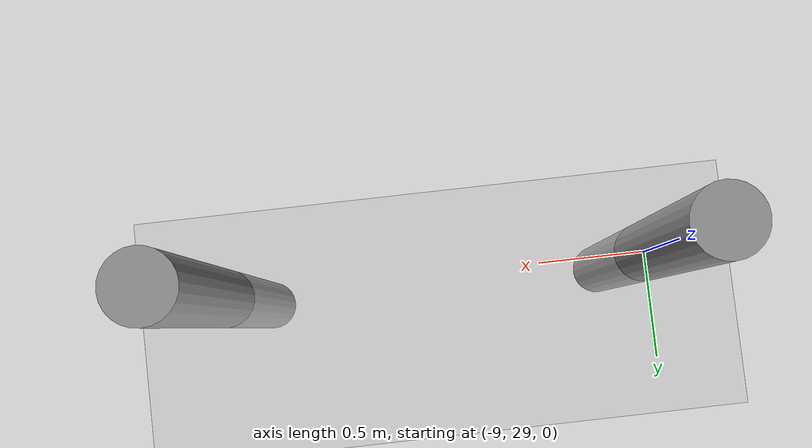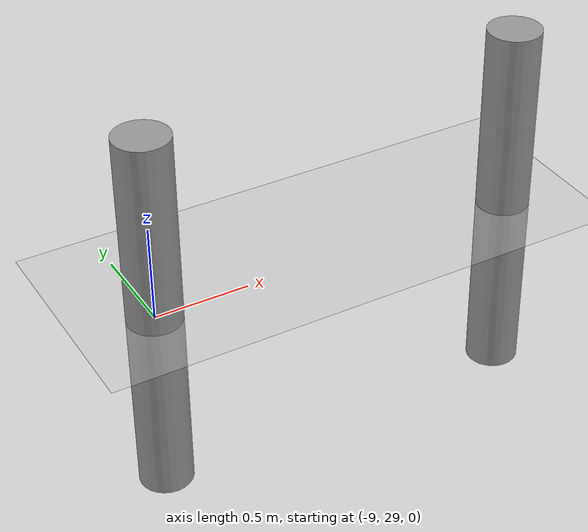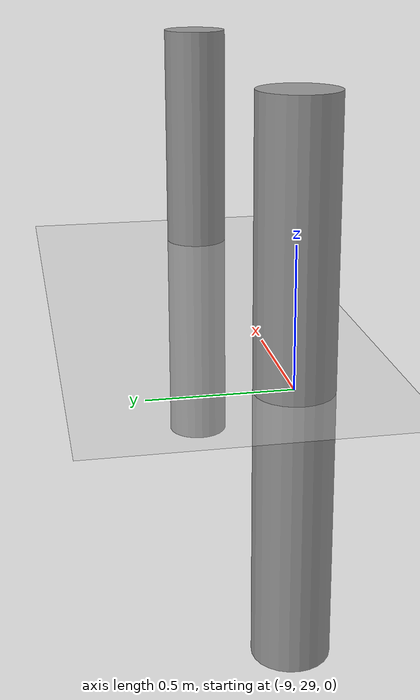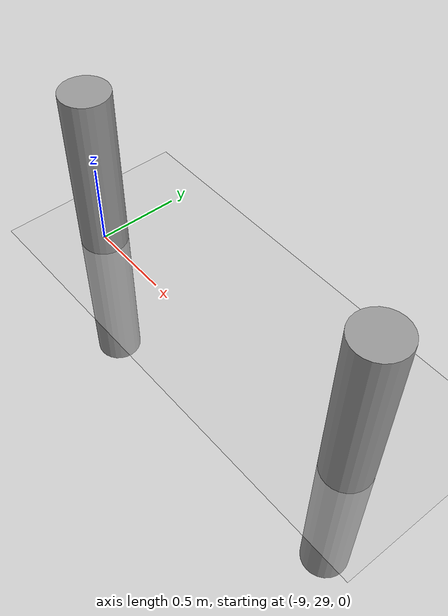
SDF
<sdf version="1.6">
 <world name="default">
  <model name="ground_plane">
   <static>1</static>
   <link name="link">
    <collision name="collision">
     <geometry><plane><normal>0 0 1</normal><size>100 100</size></plane></geometry>
     <surface><friction><ode><mu>100</mu><mu2>50</mu2></ode></friction></surface>
    </collision>
    <visual name="visual">
     <cast_shadows>0</cast_shadows>
     <geometry><plane><normal>0 0 1</normal><size>100 100</size></plane></geometry>
     <material>
      <script><uri>file://media/materials/scripts/gazebo.material</uri><name>Gazebo/Grey</name></script>
     </material>
    </visual>
   </link>
  </model>
  <model name="my_cylinder014_clone_36_0">
   <pose>-7 29 0 0 -0 0</pose>
   <link name="my_cylinder014::link">
    <inertial>
     <mass>1</mass>
     <inertia><ixx>0.145833</ixx><ixy>0</ixy><ixz>0</ixz><iyy>0.145833</iyy><iyz>0</iyz><izz>0.125</izz></inertia>
    </inertial>
    <visual name="visual">
     <geometry><cylinder><radius>0.14</radius><length>2</length></cylinder></geometry>
     <material>
      <script><name>Gazebo/Grey</name><uri>file://media/materials/scripts/gazebo.material</uri></script>
      <ambient>0.3 0.3 0.3 1</ambient>
      <diffuse>0.7 0.7 0.7 1</diffuse>
      <specular>1 0.01 0.01 1</specular>
      <emissive>0 0 0 1</emissive>
      <shader type="vertex"><normal_map>__default__</normal_map></shader>
     </material>
    </visual>
    <collision name="collision">
     <geometry><cylinder><radius>0.14</radius><length>2</length></cylinder></geometry>
     <surface>
      <friction>
       <ode><mu>1</mu><mu2>1</mu2><fdir1>0 0 0</fdir1><slip1>0</slip1><slip2>0</slip2></ode>
       <torsional>
        <coefficient>1</coefficient>
        <patch_radius>0</patch_radius>
        <surface_radius>0</surface_radius>
        <use_patch_radius>1</use_patch_radius>
        <ode><slip>0</slip></ode>
       </torsional>
      </friction>
      <bounce><restitution_coefficient>0</restitution_coefficient><threshold>1e+06</threshold></bounce>
      <contact>
       <collide_without_contact>0</collide_without_contact>
       <collide_without_contact_bitmask>1</collide_without_contact_bitmask>
       <collide_bitmask>1</collide_bitmask>
       <ode>
        <soft_cfm>0</soft_cfm>
        <soft_erp>0.2</soft_erp>
        <kp>1e+13</kp>
        <kd>1</kd>
        <max_vel>0.01</max_vel>
        <min_depth>0</min_depth>
       </ode>
       <bullet>
        <split_impulse>1</split_impulse>
        <split_impulse_penetration_threshold>-0.01</split_impulse_penetration_threshold>
        <soft_cfm>0</soft_cfm>
        <soft_erp>0.2</soft_erp>
        <kp>1e+13</kp>
        <kd>1</kd>
       </bullet>
      </contact>
     </surface>
    </collision>
   </link>
   <static>1</static>
  </model>
  <model name="my_cylinder014_clone_35_1">
   <pose>-9 29 0 0 -0 0</pose>
   <link name="my_cylinder014::link">
    <inertial>
     <mass>1</mass>
     <inertia><ixx>0.145833</ixx><ixy>0</ixy><ixz>0</ixz><iyy>0.145833</iyy><iyz>0</iyz><izz>0.125</izz></inertia>
    </inertial>
    <visual name="visual">
     <geometry><cylinder><radius>0.14</radius><length>2</length></cylinder></geometry>
     <material>
      <script><name>Gazebo/Grey</name><uri>file://media/materials/scripts/gazebo.material</uri></script>
      <ambient>0.3 0.3 0.3 1</ambient>
      <diffuse>0.7 0.7 0.7 1</diffuse>
      <specular>1 0.01 0.01 1</specular>
      <emissive>0 0 0 1</emissive>
      <shader type="vertex"><normal_map>__default__</normal_map></shader>
     </material>
    </visual>
    <collision name="collision">
     <geometry><cylinder><radius>0.14</radius><length>2</length></cylinder></geometry>
     <surface>
      <friction>
       <ode><mu>1</mu><mu2>1</mu2><fdir1>0 0 0</fdir1><slip1>0</slip1><slip2>0</slip2></ode>
       <torsional>
        <coefficient>1</coefficient>
        <patch_radius>0</patch_radius>
        <surface_radius>0</surface_radius>
        <use_patch_radius>1</use_patch_radius>
        <ode><slip>0</slip></ode>
       </torsional>
      </friction>
      <bounce><restitution_coefficient>0</restitution_coefficient><threshold>1e+06</threshold></bounce>
      <contact>
       <collide_without_contact>0</collide_without_contact>
       <collide_without_contact_bitmask>1</collide_without_contact_bitmask>
       <collide_bitmask>1</collide_bitmask>
       <ode>
        <soft_cfm>0</soft_cfm>
        <soft_erp>0.2</soft_erp>
        <kp>1e+13</kp>
        <kd>1</kd>
        <max_vel>0.01</max_vel>
        <min_depth>0</min_depth>
       </ode>
       <bullet>
        <split_impulse>1</split_impulse>
        <split_impulse_penetration_threshold>-0.01</split_impulse_penetration_threshold>
        <soft_cfm>0</soft_cfm>
        <soft_erp>0.2</soft_erp>
        <kp>1e+13</kp>
        <kd>1</kd>
       </bullet>
      </contact>
     </surface>
    </collision>
   </link>
   <static>1</static>
  </model>
  <model name="my_cylinder014_clone_35_1">
   <pose>-9 29 0 0 -0 0</pose>
   <link name="my_cylinder014::link">
    <inertial>
     <mass>1</mass>
     <inertia><ixx>0.145833</ixx><ixy>0</ixy><ixz>0</ixz><iyy>0.145833</iyy><iyz>0</iyz><izz>0.125</izz></inertia>
    </inertial>
    <visual name="visual">
     <geometry><cylinder><radius>0.14</radius><length>2</length></cylinder></geometry>
     <material>
      <script><name>Gazebo/Grey</name><uri>file://media/materials/scripts/gazebo.material</uri></script>
      <ambient>0.3 0.3 0.3 1</ambient>
      <diffuse>0.7 0.7 0.7 1</diffuse>
      <specular>1 0.01 0.01 1</specular>
      <emissive>0 0 0 1</emissive>
      <shader type="vertex"><normal_map>__default__</normal_map></shader>
     </material>
    </visual>
    <collision name="collision">
     <geometry><cylinder><radius>0.14</radius><length>2</length></cylinder></geometry>
     <surface>
      <friction>
       <ode><mu>1</mu><mu2>1</mu2><fdir1>0 0 0</fdir1><slip1>0</slip1><slip2>0</slip2></ode>
       <torsional>
        <coefficient>1</coefficient>
        <patch_radius>0</patch_radius>
        <surface_radius>0</surface_radius>
        <use_patch_radius>1</use_patch_radius>
        <ode><slip>0</slip></ode>
       </torsional>
      </friction>
      <bounce><restitution_coefficient>0</restitution_coefficient><threshold>1e+06</threshold></bounce>
      <contact>
       <collide_without_contact>0</collide_without_contact>
       <collide_without_contact_bitmask>1</collide_without_contact_bitmask>
       <collide_bitmask>1</collide_bitmask>
       <ode>
        <soft_cfm>0</soft_cfm>
        <soft_erp>0.2</soft_erp>
        <kp>1e+13</kp>
        <kd>1</kd>
        <max_vel>0.01</max_vel>
        <min_depth>0</min_depth>
       </ode>
       <bullet>
        <split_impulse>1</split_impulse>
        <split_impulse_penetration_threshold>-0.01</split_impulse_penetration_threshold>
        <soft_cfm>0</soft_cfm>
        <soft_erp>0.2</soft_erp>
        <kp>1e+13</kp>
        <kd>1</kd>
       </bullet>
      </contact>
     </surface>
    </collision>
   </link>
   <static>1</static>
  </model>
 </world>
</sdf>
